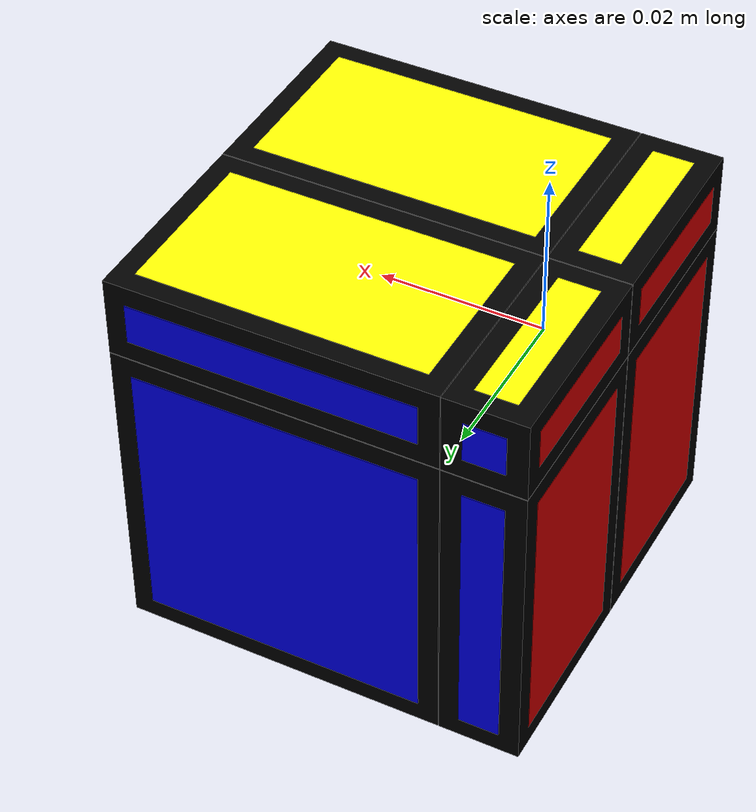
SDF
<?xml version="1.0" ?>
<sdf version="1.7">
	<model name="mirror_cube_2x2">
		<link name="center"/>
		<link name="cubie_0_0_0">
			<pose>-0.005050000000000001 -0.01255 -0.020050000000000002 0.0 0.0 0.0</pose>
			<inertial>
				<mass>0.003900000000000001</mass>
				<inertia>
					<ixx>7.231250000000004e-07</ixx>
					<ixy>0.0</ixy>
					<ixz>0.0</ixz>
					<iyy>5.525000000000002e-07</iyy>
					<iyz>0.0</iyz>
					<izz>2.3562500000000013e-07</izz>
				</inertia>
			</inertial>
			<collision name="collision">
				<geometry>
					<box>
						<size>0.010000000000000002 0.025 0.04</size>
					</box>
				</geometry>
				<surface>
					<friction>
						<ode>
							<mu>0.6</mu>
							<mu2>0.6</mu2>
						</ode>
					</friction>
				</surface>
			</collision>
			<visual name="black">
				<geometry>
					<box>
						<size>0.010000000000000002 0.025 0.04</size>
					</box>
				</geometry>
				<material>
					<diffuse>0 0 0 1</diffuse>
				</material>
			</visual>
			<visual name="red">
				<pose>-0.005000000000000001 0.0 0.0 0.0 0.0 0.0</pose>
				<geometry>
					<box>
						<size>5e-05 0.02 0.035</size>
					</box>
				</geometry>
				<material>
					<diffuse>1 0 0 1</diffuse>
				</material>
			</visual>
			<visual name="green">
				<pose>0.0 -0.0125 0.0 0.0 0.0 0.0</pose>
				<geometry>
					<box>
						<size>0.005 0.0002 0.035</size>
					</box>
				</geometry>
				<material>
					<diffuse>0 1 0 1</diffuse>
				</material>
			</visual>
			<visual name="white">
				<pose>0.0 0.0 -0.02 0.0 0.0 0.0</pose>
				<geometry>
					<box>
						<size>0.005 0.02 0.00035</size>
					</box>
				</geometry>
				<material>
					<diffuse>1 1 1 1</diffuse>
				</material>
			</visual>
		</link>
		<joint name="ball_0_0_0" type="ball">
			<pose>0.005050000000000001 0.01255 0.020050000000000002 -0.0 -0.0 -0.0</pose>
			<parent>center</parent>
			<child>cubie_0_0_0</child>
			<axis>
				<dynamics>
					<damping>0.1</damping>
				</dynamics>
				<limit>
					<effort>0</effort>
				</limit>
			</axis>
		</joint>
		<link name="cubie_0_0_1">
			<pose>-0.005050000000000001 -0.01255 0.005050000000000001 0.0 0.0 0.0</pose>
			<inertial>
				<mass>0.0009750000000000004</mass>
				<inertia>
					<ixx>5.890625000000004e-08</ixx>
					<ixy>0.0</ixy>
					<ixz>0.0</ixz>
					<iyy>1.6250000000000013e-08</iyy>
					<iyz>0.0</iyz>
					<izz>5.890625000000004e-08</izz>
				</inertia>
			</inertial>
			<collision name="collision">
				<geometry>
					<box>
						<size>0.010000000000000002 0.025 0.010000000000000002</size>
					</box>
				</geometry>
				<surface>
					<friction>
						<ode>
							<mu>0.6</mu>
							<mu2>0.6</mu2>
						</ode>
					</friction>
				</surface>
			</collision>
			<visual name="black">
				<geometry>
					<box>
						<size>0.010000000000000002 0.025 0.010000000000000002</size>
					</box>
				</geometry>
				<material>
					<diffuse>0 0 0 1</diffuse>
				</material>
			</visual>
			<visual name="red">
				<pose>-0.005000000000000001 0.0 0.0 0.0 0.0 0.0</pose>
				<geometry>
					<box>
						<size>5e-05 0.02 0.005</size>
					</box>
				</geometry>
				<material>
					<diffuse>1 0 0 1</diffuse>
				</material>
			</visual>
			<visual name="green">
				<pose>0.0 -0.0125 0.0 0.0 0.0 0.0</pose>
				<geometry>
					<box>
						<size>0.005 0.0002 0.005</size>
					</box>
				</geometry>
				<material>
					<diffuse>0 1 0 1</diffuse>
				</material>
			</visual>
			<visual name="yellow">
				<pose>0.0 0.0 0.005000000000000001 0.0 0.0 0.0</pose>
				<geometry>
					<box>
						<size>0.005 0.02 5e-05</size>
					</box>
				</geometry>
				<material>
					<diffuse>1 1 0 1</diffuse>
				</material>
			</visual>
		</link>
		<joint name="ball_0_0_1" type="ball">
			<pose>0.005050000000000001 0.01255 -0.005050000000000001 -0.0 -0.0 -0.0</pose>
			<parent>center</parent>
			<child>cubie_0_0_1</child>
			<axis>
				<dynamics>
					<damping>0.1</damping>
				</dynamics>
				<limit>
					<effort>0</effort>
				</limit>
			</axis>
		</joint>
		<link name="cubie_0_1_0">
			<pose>-0.005050000000000001 0.01255 -0.020050000000000002 0.0 0.0 0.0</pose>
			<inertial>
				<mass>0.003900000000000001</mass>
				<inertia>
					<ixx>7.231250000000004e-07</ixx>
					<ixy>0.0</ixy>
					<ixz>0.0</ixz>
					<iyy>5.525000000000002e-07</iyy>
					<iyz>0.0</iyz>
					<izz>2.3562500000000013e-07</izz>
				</inertia>
			</inertial>
			<collision name="collision">
				<geometry>
					<box>
						<size>0.010000000000000002 0.025 0.04</size>
					</box>
				</geometry>
				<surface>
					<friction>
						<ode>
							<mu>0.6</mu>
							<mu2>0.6</mu2>
						</ode>
					</friction>
				</surface>
			</collision>
			<visual name="black">
				<geometry>
					<box>
						<size>0.010000000000000002 0.025 0.04</size>
					</box>
				</geometry>
				<material>
					<diffuse>0 0 0 1</diffuse>
				</material>
			</visual>
			<visual name="red">
				<pose>-0.005000000000000001 0.0 0.0 0.0 0.0 0.0</pose>
				<geometry>
					<box>
						<size>5e-05 0.02 0.035</size>
					</box>
				</geometry>
				<material>
					<diffuse>1 0 0 1</diffuse>
				</material>
			</visual>
			<visual name="blue">
				<pose>0.0 0.0125 0.0 0.0 0.0 0.0</pose>
				<geometry>
					<box>
						<size>0.005 0.0002 0.035</size>
					</box>
				</geometry>
				<material>
					<diffuse>0 0 1 1</diffuse>
				</material>
			</visual>
			<visual name="white">
				<pose>0.0 0.0 -0.02 0.0 0.0 0.0</pose>
				<geometry>
					<box>
						<size>0.005 0.02 0.00035</size>
					</box>
				</geometry>
				<material>
					<diffuse>1 1 1 1</diffuse>
				</material>
			</visual>
		</link>
		<joint name="ball_0_1_0" type="ball">
			<pose>0.005050000000000001 -0.01255 0.020050000000000002 -0.0 -0.0 -0.0</pose>
			<parent>center</parent>
			<child>cubie_0_1_0</child>
			<axis>
				<dynamics>
					<damping>0.1</damping>
				</dynamics>
				<limit>
					<effort>0</effort>
				</limit>
			</axis>
		</joint>
		<link name="cubie_0_1_1">
			<pose>-0.005050000000000001 0.01255 0.005050000000000001 0.0 0.0 0.0</pose>
			<inertial>
				<mass>0.0009750000000000004</mass>
				<inertia>
					<ixx>5.890625000000004e-08</ixx>
					<ixy>0.0</ixy>
					<ixz>0.0</ixz>
					<iyy>1.6250000000000013e-08</iyy>
					<iyz>0.0</iyz>
					<izz>5.890625000000004e-08</izz>
				</inertia>
			</inertial>
			<collision name="collision">
				<geometry>
					<box>
						<size>0.010000000000000002 0.025 0.010000000000000002</size>
					</box>
				</geometry>
				<surface>
					<friction>
						<ode>
							<mu>0.6</mu>
							<mu2>0.6</mu2>
						</ode>
					</friction>
				</surface>
			</collision>
			<visual name="black">
				<geometry>
					<box>
						<size>0.010000000000000002 0.025 0.010000000000000002</size>
					</box>
				</geometry>
				<material>
					<diffuse>0 0 0 1</diffuse>
				</material>
			</visual>
			<visual name="red">
				<pose>-0.005000000000000001 0.0 0.0 0.0 0.0 0.0</pose>
				<geometry>
					<box>
						<size>5e-05 0.02 0.005</size>
					</box>
				</geometry>
				<material>
					<diffuse>1 0 0 1</diffuse>
				</material>
			</visual>
			<visual name="blue">
				<pose>0.0 0.0125 0.0 0.0 0.0 0.0</pose>
				<geometry>
					<box>
						<size>0.005 0.0002 0.005</size>
					</box>
				</geometry>
				<material>
					<diffuse>0 0 1 1</diffuse>
				</material>
			</visual>
			<visual name="yellow">
				<pose>0.0 0.0 0.005000000000000001 0.0 0.0 0.0</pose>
				<geometry>
					<box>
						<size>0.005 0.02 5e-05</size>
					</box>
				</geometry>
				<material>
					<diffuse>1 1 0 1</diffuse>
				</material>
			</visual>
		</link>
		<joint name="ball_0_1_1" type="ball">
			<pose>0.005050000000000001 -0.01255 -0.005050000000000001 -0.0 -0.0 -0.0</pose>
			<parent>center</parent>
			<child>cubie_0_1_1</child>
			<axis>
				<dynamics>
					<damping>0.1</damping>
				</dynamics>
				<limit>
					<effort>0</effort>
				</limit>
			</axis>
		</joint>
		<link name="cubie_1_0_0">
			<pose>0.020050000000000002 -0.01255 -0.020050000000000002 0.0 0.0 0.0</pose>
			<inertial>
				<mass>0.015600000000000001</mass>
				<inertia>
					<ixx>2.8925000000000007e-06</ixx>
					<ixy>0.0</ixy>
					<ixz>0.0</ixz>
					<iyy>4.160000000000001e-06</iyy>
					<iyz>0.0</iyz>
					<izz>2.8925000000000007e-06</izz>
				</inertia>
			</inertial>
			<collision name="collision">
				<geometry>
					<box>
						<size>0.04 0.025 0.04</size>
					</box>
				</geometry>
				<surface>
					<friction>
						<ode>
							<mu>0.6</mu>
							<mu2>0.6</mu2>
						</ode>
					</friction>
				</surface>
			</collision>
			<visual name="black">
				<geometry>
					<box>
						<size>0.04 0.025 0.04</size>
					</box>
				</geometry>
				<material>
					<diffuse>0 0 0 1</diffuse>
				</material>
			</visual>
			<visual name="orange">
				<pose>0.02 0.0 0.0 0.0 0.0 0.0</pose>
				<geometry>
					<box>
						<size>0.00035 0.02 0.035</size>
					</box>
				</geometry>
				<material>
					<diffuse>1.0 0.5 0.0 1.0</diffuse>
				</material>
			</visual>
			<visual name="green">
				<pose>0.0 -0.0125 0.0 0.0 0.0 0.0</pose>
				<geometry>
					<box>
						<size>0.035 0.0002 0.035</size>
					</box>
				</geometry>
				<material>
					<diffuse>0 1 0 1</diffuse>
				</material>
			</visual>
			<visual name="white">
				<pose>0.0 0.0 -0.02 0.0 0.0 0.0</pose>
				<geometry>
					<box>
						<size>0.035 0.02 0.00035</size>
					</box>
				</geometry>
				<material>
					<diffuse>1 1 1 1</diffuse>
				</material>
			</visual>
		</link>
		<joint name="ball_1_0_0" type="ball">
			<pose>-0.020050000000000002 0.01255 0.020050000000000002 -0.0 -0.0 -0.0</pose>
			<parent>center</parent>
			<child>cubie_1_0_0</child>
			<axis>
				<dynamics>
					<damping>0.1</damping>
				</dynamics>
				<limit>
					<effort>0</effort>
				</limit>
			</axis>
		</joint>
		<link name="cubie_1_0_1">
			<pose>0.020050000000000002 -0.01255 0.005050000000000001 0.0 0.0 0.0</pose>
			<inertial>
				<mass>0.003900000000000001</mass>
				<inertia>
					<ixx>2.3562500000000013e-07</ixx>
					<ixy>0.0</ixy>
					<ixz>0.0</ixz>
					<iyy>5.525000000000002e-07</iyy>
					<iyz>0.0</iyz>
					<izz>7.231250000000004e-07</izz>
				</inertia>
			</inertial>
			<collision name="collision">
				<geometry>
					<box>
						<size>0.04 0.025 0.010000000000000002</size>
					</box>
				</geometry>
				<surface>
					<friction>
						<ode>
							<mu>0.6</mu>
							<mu2>0.6</mu2>
						</ode>
					</friction>
				</surface>
			</collision>
			<visual name="black">
				<geometry>
					<box>
						<size>0.04 0.025 0.010000000000000002</size>
					</box>
				</geometry>
				<material>
					<diffuse>0 0 0 1</diffuse>
				</material>
			</visual>
			<visual name="orange">
				<pose>0.02 0.0 0.0 0.0 0.0 0.0</pose>
				<geometry>
					<box>
						<size>0.00035 0.02 0.005</size>
					</box>
				</geometry>
				<material>
					<diffuse>1.0 0.5 0.0 1.0</diffuse>
				</material>
			</visual>
			<visual name="green">
				<pose>0.0 -0.0125 0.0 0.0 0.0 0.0</pose>
				<geometry>
					<box>
						<size>0.035 0.0002 0.005</size>
					</box>
				</geometry>
				<material>
					<diffuse>0 1 0 1</diffuse>
				</material>
			</visual>
			<visual name="yellow">
				<pose>0.0 0.0 0.005000000000000001 0.0 0.0 0.0</pose>
				<geometry>
					<box>
						<size>0.035 0.02 5e-05</size>
					</box>
				</geometry>
				<material>
					<diffuse>1 1 0 1</diffuse>
				</material>
			</visual>
		</link>
		<joint name="ball_1_0_1" type="ball">
			<pose>-0.020050000000000002 0.01255 -0.005050000000000001 -0.0 -0.0 -0.0</pose>
			<parent>center</parent>
			<child>cubie_1_0_1</child>
			<axis>
				<dynamics>
					<damping>0.1</damping>
				</dynamics>
				<limit>
					<effort>0</effort>
				</limit>
			</axis>
		</joint>
		<link name="cubie_1_1_0">
			<pose>0.020050000000000002 0.01255 -0.020050000000000002 0.0 0.0 0.0</pose>
			<inertial>
				<mass>0.015600000000000001</mass>
				<inertia>
					<ixx>2.8925000000000007e-06</ixx>
					<ixy>0.0</ixy>
					<ixz>0.0</ixz>
					<iyy>4.160000000000001e-06</iyy>
					<iyz>0.0</iyz>
					<izz>2.8925000000000007e-06</izz>
				</inertia>
			</inertial>
			<collision name="collision">
				<geometry>
					<box>
						<size>0.04 0.025 0.04</size>
					</box>
				</geometry>
				<surface>
					<friction>
						<ode>
							<mu>0.6</mu>
							<mu2>0.6</mu2>
						</ode>
					</friction>
				</surface>
			</collision>
			<visual name="black">
				<geometry>
					<box>
						<size>0.04 0.025 0.04</size>
					</box>
				</geometry>
				<material>
					<diffuse>0 0 0 1</diffuse>
				</material>
			</visual>
			<visual name="orange">
				<pose>0.02 0.0 0.0 0.0 0.0 0.0</pose>
				<geometry>
					<box>
						<size>0.00035 0.02 0.035</size>
					</box>
				</geometry>
				<material>
					<diffuse>1.0 0.5 0.0 1.0</diffuse>
				</material>
			</visual>
			<visual name="blue">
				<pose>0.0 0.0125 0.0 0.0 0.0 0.0</pose>
				<geometry>
					<box>
						<size>0.035 0.0002 0.035</size>
					</box>
				</geometry>
				<material>
					<diffuse>0 0 1 1</diffuse>
				</material>
			</visual>
			<visual name="white">
				<pose>0.0 0.0 -0.02 0.0 0.0 0.0</pose>
				<geometry>
					<box>
						<size>0.035 0.02 0.00035</size>
					</box>
				</geometry>
				<material>
					<diffuse>1 1 1 1</diffuse>
				</material>
			</visual>
		</link>
		<joint name="ball_1_1_0" type="ball">
			<pose>-0.020050000000000002 -0.01255 0.020050000000000002 -0.0 -0.0 -0.0</pose>
			<parent>center</parent>
			<child>cubie_1_1_0</child>
			<axis>
				<dynamics>
					<damping>0.1</damping>
				</dynamics>
				<limit>
					<effort>0</effort>
				</limit>
			</axis>
		</joint>
		<link name="cubie_1_1_1">
			<pose>0.020050000000000002 0.01255 0.005050000000000001 0.0 0.0 0.0</pose>
			<inertial>
				<mass>0.003900000000000001</mass>
				<inertia>
					<ixx>2.3562500000000013e-07</ixx>
					<ixy>0.0</ixy>
					<ixz>0.0</ixz>
					<iyy>5.525000000000002e-07</iyy>
					<iyz>0.0</iyz>
					<izz>7.231250000000004e-07</izz>
				</inertia>
			</inertial>
			<collision name="collision">
				<geometry>
					<box>
						<size>0.04 0.025 0.010000000000000002</size>
					</box>
				</geometry>
				<surface>
					<friction>
						<ode>
							<mu>0.6</mu>
							<mu2>0.6</mu2>
						</ode>
					</friction>
				</surface>
			</collision>
			<visual name="black">
				<geometry>
					<box>
						<size>0.04 0.025 0.010000000000000002</size>
					</box>
				</geometry>
				<material>
					<diffuse>0 0 0 1</diffuse>
				</material>
			</visual>
			<visual name="orange">
				<pose>0.02 0.0 0.0 0.0 0.0 0.0</pose>
				<geometry>
					<box>
						<size>0.00035 0.02 0.005</size>
					</box>
				</geometry>
				<material>
					<diffuse>1.0 0.5 0.0 1.0</diffuse>
				</material>
			</visual>
			<visual name="blue">
				<pose>0.0 0.0125 0.0 0.0 0.0 0.0</pose>
				<geometry>
					<box>
						<size>0.035 0.0002 0.005</size>
					</box>
				</geometry>
				<material>
					<diffuse>0 0 1 1</diffuse>
				</material>
			</visual>
			<visual name="yellow">
				<pose>0.0 0.0 0.005000000000000001 0.0 0.0 0.0</pose>
				<geometry>
					<box>
						<size>0.035 0.02 5e-05</size>
					</box>
				</geometry>
				<material>
					<diffuse>1 1 0 1</diffuse>
				</material>
			</visual>
		</link>
		<joint name="ball_1_1_1" type="ball">
			<pose>-0.020050000000000002 -0.01255 -0.005050000000000001 -0.0 -0.0 -0.0</pose>
			<parent>center</parent>
			<child>cubie_1_1_1</child>
			<axis>
				<dynamics>
					<damping>0.1</damping>
				</dynamics>
				<limit>
					<effort>0</effort>
				</limit>
			</axis>
		</joint>
	</model>
</sdf>
